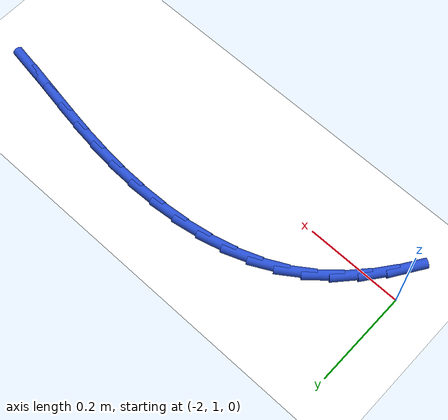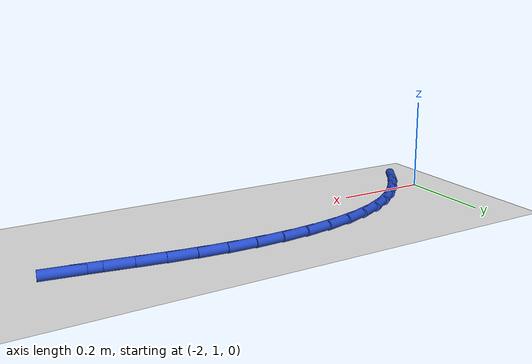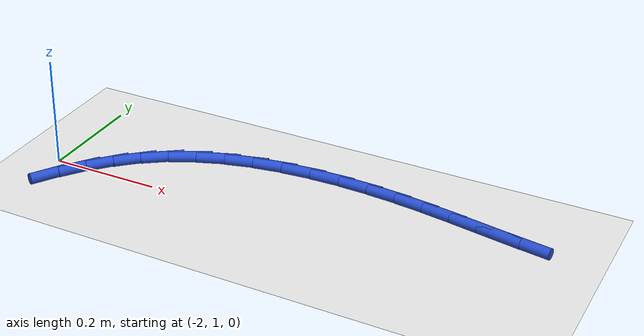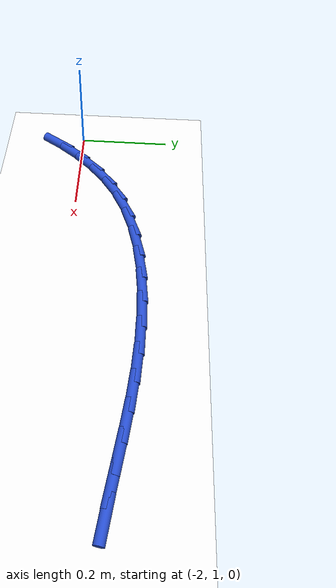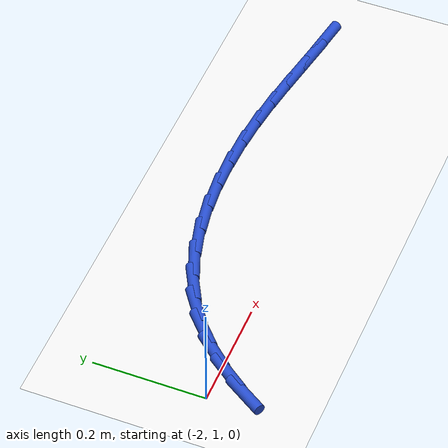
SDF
<sdf version="1.6">
 <world name="default">
  <model name="ground_plane">
   <static>1</static>
   <link name="link">
    <collision name="collision">
     <geometry><plane><normal>0 0 1</normal><size>100 100</size></plane></geometry>
     <surface><friction><ode><mu>100</mu><mu2>50</mu2></ode></friction></surface>
    </collision>
    <visual name="visual">
     <cast_shadows>0</cast_shadows>
     <geometry><plane><normal>0 0 1</normal><size>100 100</size></plane></geometry>
     <material>
      <script><uri>file://media/materials/scripts/gazebo.material</uri><name>Gazebo/WhiteGlow</name></script>
     </material>
    </visual>
   </link>
  </model>
  <model name="line">
   <link name="link_34">
    <pose>-1.1467030007730448 1.1146908885144284 0.01 0 1.57 -0.15319002748215022</pose>
    <collision name="collision">
     <geometry><cylinder><radius>0.01</radius><length>0.08</length></cylinder></geometry>
    </collision>
    <visual name="visual">
     <material>
      <script><name>Gazebo/Blue</name><uri>file://media/materials/scripts/gazebo.material</uri></script>
     </material>
     <geometry><cylinder><radius>0.01</radius><length>0.08</length></cylinder></geometry>
    </visual>
   </link>
   <link name="link_35">
    <pose>-1.1987267103418553 1.1227233334901834 0.01 0 1.57 -0.16751021772606114</pose>
    <collision name="collision">
     <geometry><cylinder><radius>0.01</radius><length>0.08</length></cylinder></geometry>
    </collision>
    <visual name="visual">
     <material>
      <script><name>Gazebo/Blue</name><uri>file://media/materials/scripts/gazebo.material</uri></script>
     </material>
     <geometry><cylinder><radius>0.01</radius><length>0.08</length></cylinder></geometry>
    </visual>
   </link>
   <link name="link_36">
    <pose>-1.2508907642682685 1.1315440019568883 0.01 0 1.57 -0.16494462611945873</pose>
    <collision name="collision">
     <geometry><cylinder><radius>0.01</radius><length>0.08</length></cylinder></geometry>
    </collision>
    <visual name="visual">
     <material>
      <script><name>Gazebo/Blue</name><uri>file://media/materials/scripts/gazebo.material</uri></script>
     </material>
     <geometry><cylinder><radius>0.01</radius><length>0.08</length></cylinder></geometry>
    </visual>
   </link>
   <link name="link_37">
    <pose>-1.3035535483982286 1.1403100886138635 0.01 0 1.57 -0.14597798357198347</pose>
    <collision name="collision">
     <geometry><cylinder><radius>0.01</radius><length>0.08</length></cylinder></geometry>
    </collision>
    <visual name="visual">
     <material>
      <script><name>Gazebo/Blue</name><uri>file://media/materials/scripts/gazebo.material</uri></script>
     </material>
     <geometry><cylinder><radius>0.01</radius><length>0.08</length></cylinder></geometry>
    </visual>
   </link>
   <link name="link_38">
    <pose>-1.3570734485776779 1.1481787881604293 0.01 0 1.57 -0.11190379082181612</pose>
    <collision name="collision">
     <geometry><cylinder><radius>0.01</radius><length>0.08</length></cylinder></geometry>
    </collision>
    <visual name="visual">
     <material>
      <script><name>Gazebo/Blue</name><uri>file://media/materials/scripts/gazebo.material</uri></script>
     </material>
     <geometry><cylinder><radius>0.01</radius><length>0.08</length></cylinder></geometry>
    </visual>
   </link>
   <link name="link_39">
    <pose>-1.4117688533883204 1.154325088339026 0.01 0 1.57 -0.06889897911702023</pose>
    <collision name="collision">
     <geometry><cylinder><radius>0.01</radius><length>0.08</length></cylinder></geometry>
    </collision>
    <visual name="visual">
     <material>
      <script><name>Gazebo/Blue</name><uri>file://media/materials/scripts/gazebo.material</uri></script>
     </material>
     <geometry><cylinder><radius>0.01</radius><length>0.08</length></cylinder></geometry>
    </visual>
   </link>
   <link name="link_40">
    <pose>-1.46741591864718 1.158165192663913 0.01 0 1.57 -0.02007039555825768</pose>
    <collision name="collision">
     <geometry><cylinder><radius>0.01</radius><length>0.08</length></cylinder></geometry>
    </collision>
    <visual name="visual">
     <material>
      <script><name>Gazebo/Blue</name><uri>file://media/materials/scripts/gazebo.material</uri></script>
     </material>
     <geometry><cylinder><radius>0.01</radius><length>0.08</length></cylinder></geometry>
    </visual>
   </link>
   <link name="link_41">
    <pose>-1.5234004052836085 1.1592889743540893 0.01 0 1.57 0.035871069887644304</pose>
    <collision name="collision">
     <geometry><cylinder><radius>0.01</radius><length>0.08</length></cylinder></geometry>
    </collision>
    <visual name="visual">
     <material>
      <script><name>Gazebo/Blue</name><uri>file://media/materials/scripts/gazebo.material</uri></script>
     </material>
     <geometry><cylinder><radius>0.01</radius><length>0.08</length></cylinder></geometry>
    </visual>
   </link>
   <link name="link_42">
    <pose>-1.5790994757789174 1.1572901317040867 0.01 0 1.57 0.10054837489951907</pose>
    <collision name="collision">
     <geometry><cylinder><radius>0.01</radius><length>0.08</length></cylinder></geometry>
    </collision>
    <visual name="visual">
     <material>
      <script><name>Gazebo/Blue</name><uri>file://media/materials/scripts/gazebo.material</uri></script>
     </material>
     <geometry><cylinder><radius>0.01</radius><length>0.08</length></cylinder></geometry>
    </visual>
   </link>
   <link name="link_43">
    <pose>-1.6338902926144176 1.1517623630084355 0.01 0 1.57 0.17584135414790342</pose>
    <collision name="collision">
     <geometry><cylinder><radius>0.01</radius><length>0.08</length></cylinder></geometry>
    </collision>
    <visual name="visual">
     <material>
      <script><name>Gazebo/Blue</name><uri>file://media/materials/scripts/gazebo.material</uri></script>
     </material>
     <geometry><cylinder><radius>0.01</radius><length>0.08</length></cylinder></geometry>
    </visual>
   </link>
   <link name="link_44">
    <pose>-1.6871500182714212 1.1422993665616665 0.01 0 1.57 0.2638205413015839</pose>
    <collision name="collision">
     <geometry><cylinder><radius>0.01</radius><length>0.08</length></cylinder></geometry>
    </collision>
    <visual name="visual">
     <material>
      <script><name>Gazebo/Blue</name><uri>file://media/materials/scripts/gazebo.material</uri></script>
     </material>
     <geometry><cylinder><radius>0.01</radius><length>0.08</length></cylinder></geometry>
    </visual>
   </link>
   <link name="link_45">
    <pose>-1.738255815231239 1.1284948406583115 0.01 0 1.57 0.36652960835199705</pose>
    <collision name="collision">
     <geometry><cylinder><radius>0.01</radius><length>0.08</length></cylinder></geometry>
    </collision>
    <visual name="visual">
     <material>
      <script><name>Gazebo/Blue</name><uri>file://media/materials/scripts/gazebo.material</uri></script>
     </material>
     <geometry><cylinder><radius>0.01</radius><length>0.08</length></cylinder></geometry>
    </visual>
   </link>
   <link name="link_46">
    <pose>-1.7865848459751832 1.1099424835929008 0.01 0 1.57 0.48551305636139785</pose>
    <collision name="collision">
     <geometry><cylinder><radius>0.01</radius><length>0.08</length></cylinder></geometry>
    </collision>
    <visual name="visual">
     <material>
      <script><name>Gazebo/Blue</name><uri>file://media/materials/scripts/gazebo.material</uri></script>
     </material>
     <geometry><cylinder><radius>0.01</radius><length>0.08</length></cylinder></geometry>
    </visual>
   </link>
   <link name="link_47">
    <pose>-1.8315142729845646 1.086235993659966 0.01 0 1.57 0.6163957369088132</pose>
    <collision name="collision">
     <geometry><cylinder><radius>0.01</radius><length>0.08</length></cylinder></geometry>
    </collision>
    <visual name="visual">
     <material>
      <script><name>Gazebo/Blue</name><uri>file://media/materials/scripts/gazebo.material</uri></script>
     </material>
     <geometry><cylinder><radius>0.01</radius><length>0.08</length></cylinder></geometry>
    </visual>
   </link>
   <link name="link_48">
    <pose>-1.8725887787111495 1.0571354574199792 0.01 0 1.57 0.7381308289066679</pose>
    <collision name="collision">
     <geometry><cylinder><radius>0.01</radius><length>0.08</length></cylinder></geometry>
    </collision>
    <visual name="visual">
     <material>
      <script><name>Gazebo/Blue</name><uri>file://media/materials/scripts/gazebo.material</uri></script>
     </material>
     <geometry><cylinder><radius>0.01</radius><length>0.08</length></cylinder></geometry>
    </visual>
   </link>
   <link name="link_49">
    <pose>-1.9100315981296636 1.0230749299002155 0.01 0 1.57 0.8433005206234342</pose>
    <collision name="collision">
     <geometry><cylinder><radius>0.01</radius><length>0.08</length></cylinder></geometry>
    </collision>
    <visual name="visual">
     <material>
      <script><name>Gazebo/Blue</name><uri>file://media/materials/scripts/gazebo.material</uri></script>
     </material>
     <geometry><cylinder><radius>0.01</radius><length>0.08</length></cylinder></geometry>
    </visual>
   </link>
   <link name="link_50">
    <pose>-1.9442377492196126 0.9846590886286914 0.01 0 1.57 0.9312586306665619</pose>
    <collision name="collision">
     <geometry><cylinder><radius>0.01</radius><length>0.08</length></cylinder></geometry>
    </collision>
    <visual name="visual">
     <material>
      <script><name>Gazebo/Blue</name><uri>file://media/materials/scripts/gazebo.material</uri></script>
     </material>
     <geometry><cylinder><radius>0.01</radius><length>0.08</length></cylinder></geometry>
    </visual>
   </link>
   <link name="link_51">
    <pose>-1.9756022499729622 0.9424926111458028 0.01 0 1.57 1.0027694228958193</pose>
    <collision name="collision">
     <geometry><cylinder><radius>0.01</radius><length>0.08</length></cylinder></geometry>
    </collision>
    <visual name="visual">
     <material>
      <script><name>Gazebo/Blue</name><uri>file://media/materials/scripts/gazebo.material</uri></script>
     </material>
     <geometry><cylinder><radius>0.01</radius><length>0.08</length></cylinder></geometry>
    </visual>
   </link>
  </model>
 </world>
</sdf>
